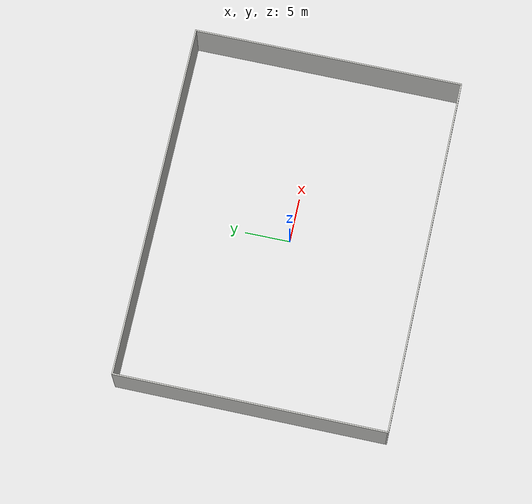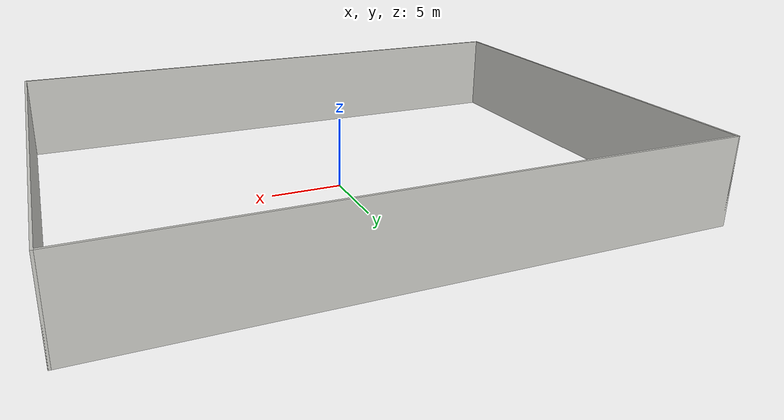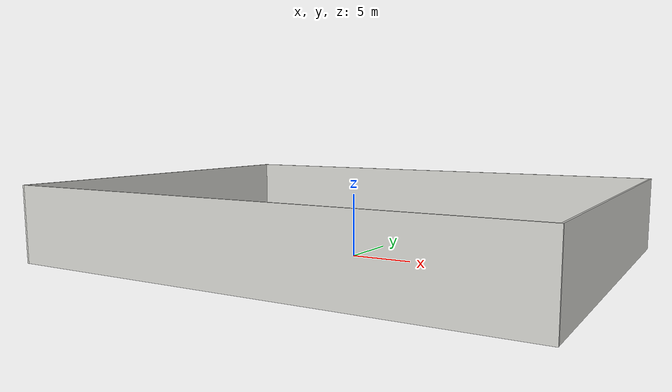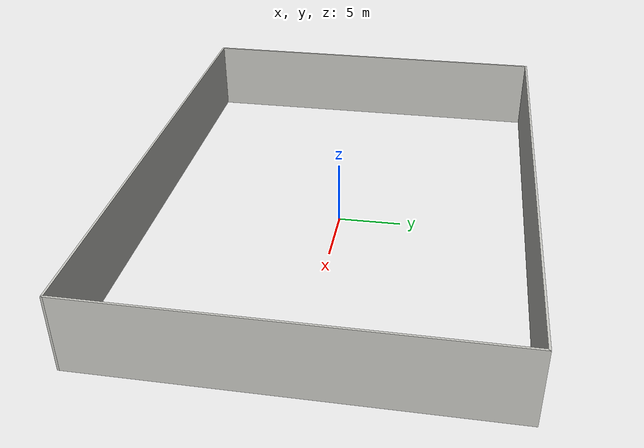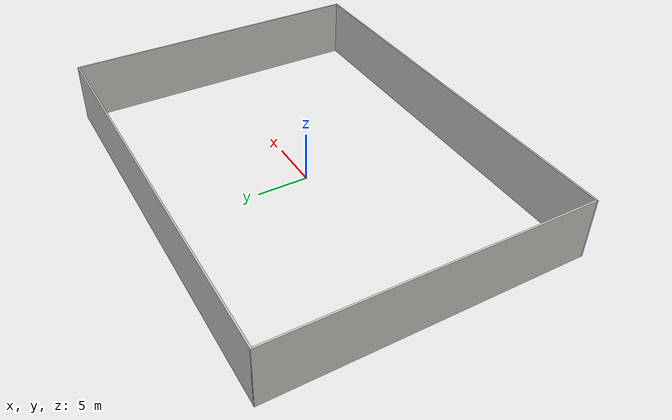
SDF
<?xml version='1.0'?>
<sdf version='1.6'>
  <model name='factory_outer_frame'>
    <pose frame=''>0 0 0 0 -0 0</pose>
    <link name='Wall_0'>
      <collision name='Wall_0_Collision'>
        <geometry>
          <box>
            <size>30.15 0.15 6</size>
          </box>
        </geometry>
        <pose frame=''>0 0 3 0 -0 0</pose>
      </collision>
      <visual name='Wall_0_Visual'>
        <cast_shadows>false</cast_shadows>
        <pose frame=''>0 0 3 0 -0 0</pose>
        <geometry>
          <box>
            <size>30.15 0.15 6</size>
          </box>
        </geometry>
        <material>
          <script>
            <uri>file://media/materials/scripts/gazebo.material</uri>
            <name>Gazebo/CeilingTiled</name>
          </script>
          <ambient>1 1 1 1</ambient>
        </material>
      </visual>
      <pose frame=''>20 0 0 0 0 -1.5708</pose>
    </link>
    <link name='Wall_1'>
      <collision name='Wall_1_Collision'>
        <geometry>
          <box>
            <size>40.15 0.15 6</size>
          </box>
        </geometry>
        <pose frame=''>0 0 3 0 -0 0</pose>
      </collision>
      <visual name='Wall_1_Visual'>
        <cast_shadows>false</cast_shadows>
        <pose frame=''>0 0 3 0 -0 0</pose>
        <geometry>
          <box>
            <size>40.15 0.15 6</size>
          </box>
        </geometry>
        <material>
          <script>
            <uri>file://media/materials/scripts/gazebo.material</uri>
            <name>Gazebo/CeilingTiled</name>
          </script>
          <ambient>1 1 1 1</ambient>
        </material>
      </visual>
      <pose frame=''>0 -15 0 0 -0 3.14159</pose>
    </link>
    <link name='Wall_2'>
      <collision name='Wall_2_Collision'>
        <geometry>
          <box>
            <size>30.15 0.15 6</size>
          </box>
        </geometry>
        <pose frame=''>0 0 3 0 -0 0</pose>
      </collision>
      <visual name='Wall_2_Visual'>
        <cast_shadows>false</cast_shadows>
        <pose frame=''>0 0 3 0 -0 0</pose>
        <geometry>
          <box>
            <size>30.15 0.15 6</size>
          </box>
        </geometry>
        <material>
          <script>
            <uri>file://media/materials/scripts/gazebo.material</uri>
            <name>Gazebo/CeilingTiled</name>
          </script>
          <ambient>1 1 1 1</ambient>
        </material>
      </visual>
      <pose frame=''>-20 0 0 0 -0 1.5708</pose>
    </link>
    <link name='Wall_3'>
      <collision name='Wall_3_Collision'>
        <geometry>
          <box>
            <size>40.15 0.15 6</size>
          </box>
        </geometry>
        <pose frame=''>0 0 3 0 -0 0</pose>
      </collision>
      <visual name='Wall_3_Visual'>
        <cast_shadows>false</cast_shadows>
        <pose frame=''>0 0 3 0 -0 0</pose>
        <geometry>
          <box>
            <size>40.15 0.15 6</size>
          </box>
        </geometry>
        <material>
          <script>
            <uri>file://media/materials/scripts/gazebo.material</uri>
            <name>Gazebo/CeilingTiled</name>
          </script>
          <ambient>1 1 1 1</ambient>
        </material>
      </visual>
      <pose frame=''>0 15 0 0 -0 0</pose>
    </link>
    <static>1</static>
  </model>
</sdf>
